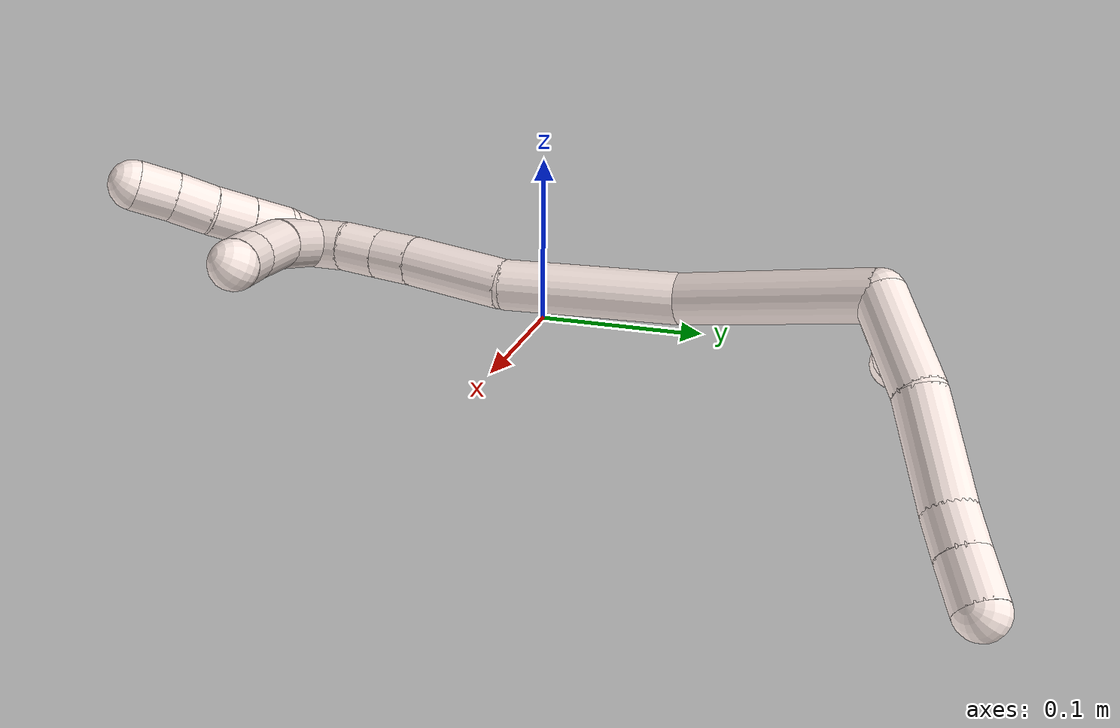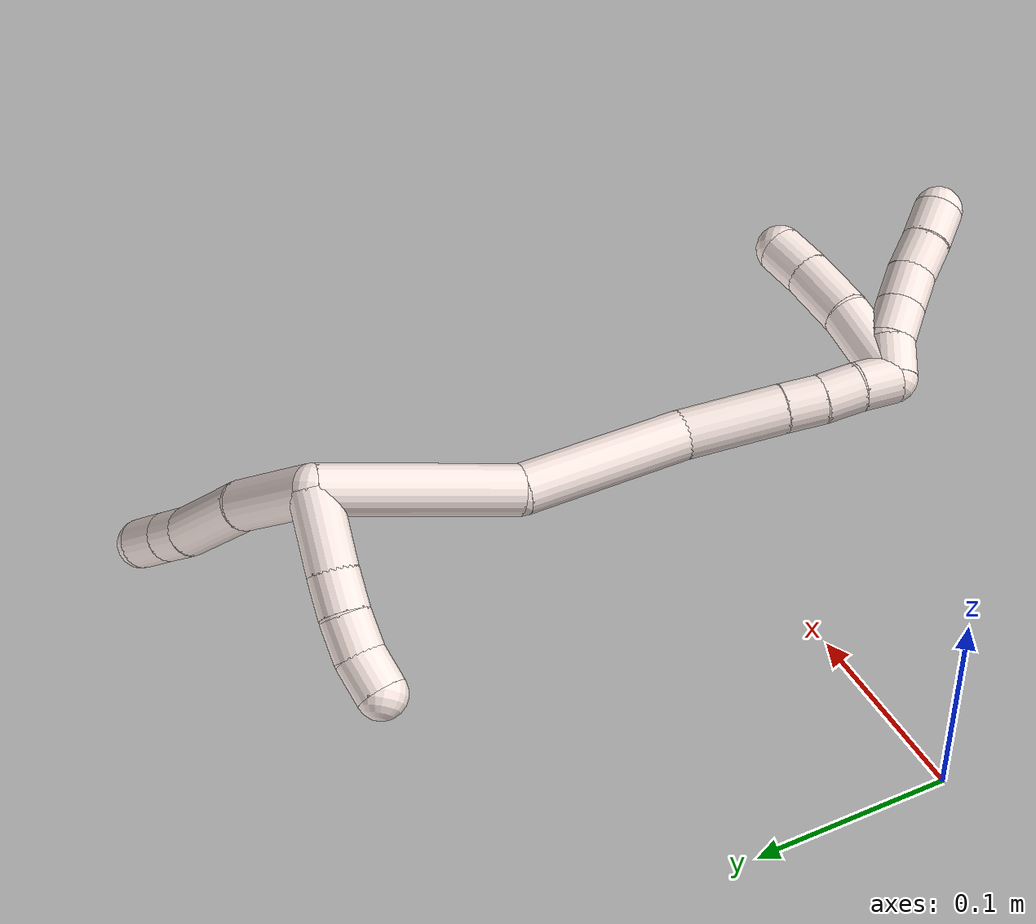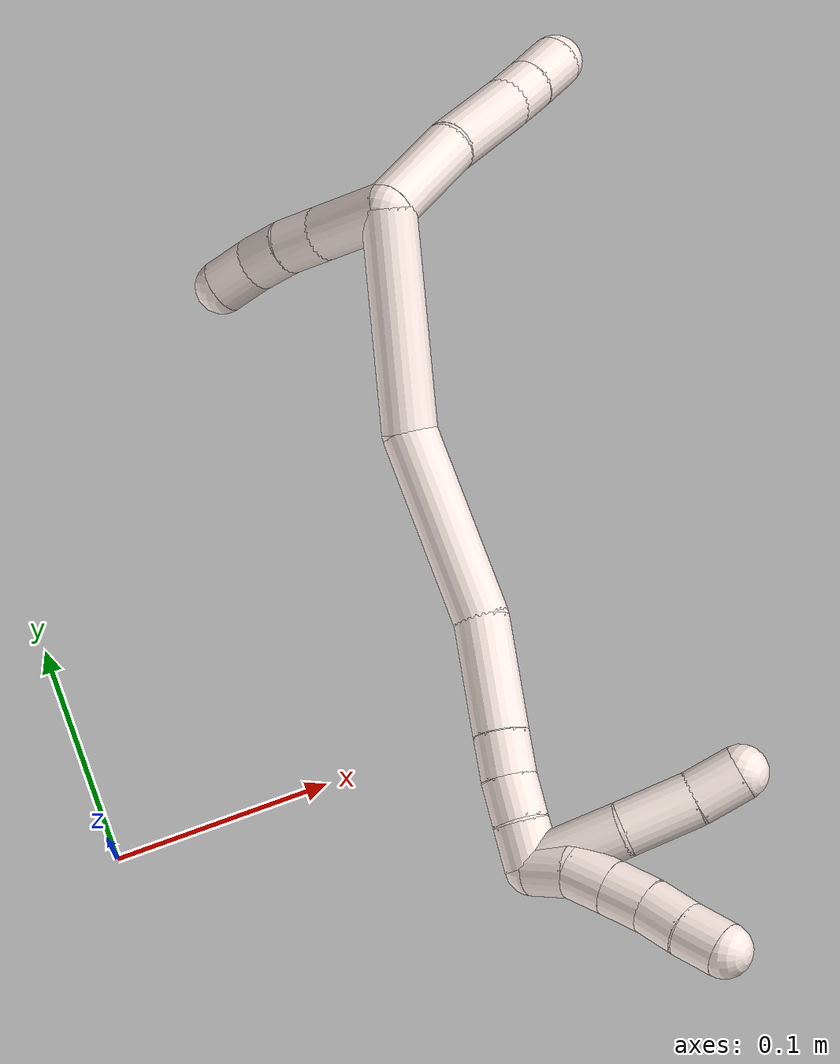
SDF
<sdf version="1.7">
 <world name="default">
  <model name="11">
   <static>0</static>
   <link name="11">
    <collision name="collision-cylinder-e_1_2_8">
     <pose>0.025138 0.007393 -0.001049 -1.7118 1.28204 -1.41999</pose>
     <geometry><cylinder><radius>0.0125</radius><length>0.052447</length></cylinder></geometry>
     <surface>
      <friction><ode><mu>1.16</mu><mu2>1.16</mu2><slip1>0</slip1><slip2>0</slip2></ode></friction>
      <contact><ode><kp>1e+06</kp><kd>1</kd><max_vel>0</max_vel><min_depth>0.001</min_depth></ode></contact>
     </surface>
    </collision>
    <visual name="visual-cylinder-e_1_2_8">
     <pose>0.025138 0.007393 -0.001049 -1.7118 1.28204 -1.41999</pose>
     <geometry><cylinder><radius>0.0125</radius><length>0.052447</length></cylinder></geometry>
     <material><ambient>1 0.933333 0.909804 1</ambient></material>
    </visual>
    <collision name="collision-cylinder-e_2_8_9">
     <pose>0.076539 0.017934 -0.004707 -2.26266 1.4164 -2.13751</pose>
     <geometry><cylinder><radius>0.0125</radius><length>0.053159</length></cylinder></geometry>
     <surface>
      <friction><ode><mu>1.16</mu><mu2>1.16</mu2><slip1>0</slip1><slip2>0</slip2></ode></friction>
      <contact><ode><kp>1e+06</kp><kd>1</kd><max_vel>0</max_vel><min_depth>0.001</min_depth></ode></contact>
     </surface>
    </collision>
    <visual name="visual-cylinder-e_2_8_9">
     <pose>0.076539 0.017934 -0.004707 -2.26266 1.4164 -2.13751</pose>
     <geometry><cylinder><radius>0.0125</radius><length>0.053159</length></cylinder></geometry>
     <material><ambient>1 0.933333 0.909804 1</ambient></material>
    </visual>
    <collision name="collision-cylinder-e_3_9_10">
     <pose>0.112638 0.023211 -0.007501 -1.65823 1.35679 -1.44303</pose>
     <geometry><cylinder><radius>0.0125</radius><length>0.02013</length></cylinder></geometry>
     <surface>
      <friction><ode><mu>1.16</mu><mu2>1.16</mu2><slip1>0</slip1><slip2>0</slip2></ode></friction>
      <contact><ode><kp>1e+06</kp><kd>1</kd><max_vel>0</max_vel><min_depth>0.001</min_depth></ode></contact>
     </surface>
    </collision>
    <visual name="visual-cylinder-e_3_9_10">
     <pose>0.112638 0.023211 -0.007501 -1.65823 1.35679 -1.44303</pose>
     <geometry><cylinder><radius>0.0125</radius><length>0.02013</length></cylinder></geometry>
     <material><ambient>1 0.933333 0.909804 1</ambient></material>
    </visual>
    <collision name="collision-cylinder-e_4_10_6">
     <pose>0.134289 0.028056 -0.008139 -1.73555 1.34191 -1.50543</pose>
     <geometry><cylinder><radius>0.0125</radius><length>0.024264</length></cylinder></geometry>
     <surface>
      <friction><ode><mu>1.16</mu><mu2>1.16</mu2><slip1>0</slip1><slip2>0</slip2></ode></friction>
      <contact><ode><kp>1e+06</kp><kd>1</kd><max_vel>0</max_vel><min_depth>0.001</min_depth></ode></contact>
     </surface>
    </collision>
    <visual name="visual-cylinder-e_4_10_6">
     <pose>0.134289 0.028056 -0.008139 -1.73555 1.34191 -1.50543</pose>
     <geometry><cylinder><radius>0.0125</radius><length>0.024264</length></cylinder></geometry>
     <material><ambient>1 0.933333 0.909804 1</ambient></material>
    </visual>
    <collision name="collision-cylinder-e_1_2_11">
     <pose>-0.000212 -0.008102 -0.017983 2.71829 -0.010765 -0.050092</pose>
     <geometry><cylinder><radius>0.0125</radius><length>0.03945</length></cylinder></geometry>
     <surface>
      <friction><ode><mu>1.16</mu><mu2>1.16</mu2><slip1>0</slip1><slip2>0</slip2></ode></friction>
      <contact><ode><kp>1e+06</kp><kd>1</kd><max_vel>0</max_vel><min_depth>0.001</min_depth></ode></contact>
     </surface>
    </collision>
    <visual name="visual-cylinder-e_1_2_11">
     <pose>-0.000212 -0.008102 -0.017983 2.71829 -0.010765 -0.050092</pose>
     <geometry><cylinder><radius>0.0125</radius><length>0.03945</length></cylinder></geometry>
     <material><ambient>1 0.933333 0.909804 1</ambient></material>
    </visual>
    <collision name="collision-cylinder-e_2_11_12">
     <pose>-0.001581 -0.020357 -0.045266 2.72166 -0.113023 -0.518949</pose>
     <geometry><cylinder><radius>0.0125</radius><length>0.020501</length></cylinder></geometry>
     <surface>
      <friction><ode><mu>1.16</mu><mu2>1.16</mu2><slip1>0</slip1><slip2>0</slip2></ode></friction>
      <contact><ode><kp>1e+06</kp><kd>1</kd><max_vel>0</max_vel><min_depth>0.001</min_depth></ode></contact>
     </surface>
    </collision>
    <visual name="visual-cylinder-e_2_11_12">
     <pose>-0.001581 -0.020357 -0.045266 2.72166 -0.113023 -0.518949</pose>
     <geometry><cylinder><radius>0.0125</radius><length>0.020501</length></cylinder></geometry>
     <material><ambient>1 0.933333 0.909804 1</ambient></material>
    </visual>
    <collision name="collision-cylinder-e_3_12_13">
     <pose>-0.00337 -0.029596 -0.063179 2.60814 -0.063195 -0.230335</pose>
     <geometry><cylinder><radius>0.0125</radius><length>0.020046</length></cylinder></geometry>
     <surface>
      <friction><ode><mu>1.16</mu><mu2>1.16</mu2><slip1>0</slip1><slip2>0</slip2></ode></friction>
      <contact><ode><kp>1e+06</kp><kd>1</kd><max_vel>0</max_vel><min_depth>0.001</min_depth></ode></contact>
     </surface>
    </collision>
    <visual name="visual-cylinder-e_3_12_13">
     <pose>-0.00337 -0.029596 -0.063179 2.60814 -0.063195 -0.230335</pose>
     <geometry><cylinder><radius>0.0125</radius><length>0.020046</length></cylinder></geometry>
     <material><ambient>1 0.933333 0.909804 1</ambient></material>
    </visual>
    <collision name="collision-cylinder-e_4_13_5">
     <pose>-0.006668 -0.040405 -0.07955 2.50603 -0.269793 -0.782664</pose>
     <geometry><cylinder><radius>0.0125</radius><length>0.020003</length></cylinder></geometry>
     <surface>
      <friction><ode><mu>1.16</mu><mu2>1.16</mu2><slip1>0</slip1><slip2>0</slip2></ode></friction>
      <contact><ode><kp>1e+06</kp><kd>1</kd><max_vel>0</max_vel><min_depth>0.001</min_depth></ode></contact>
     </surface>
    </collision>
    <visual name="visual-cylinder-e_4_13_5">
     <pose>-0.006668 -0.040405 -0.07955 2.50603 -0.269793 -0.782664</pose>
     <geometry><cylinder><radius>0.0125</radius><length>0.020003</length></cylinder></geometry>
     <material><ambient>1 0.933333 0.909804 1</ambient></material>
    </visual>
    <collision name="collision-cylinder-e_1_2_14">
     <pose>-0.010125 -0.047486 0.010692 1.34932 -0.205081 -0.164245</pose>
     <geometry><cylinder><radius>0.0125</radius><length>0.099434</length></cylinder></geometry>
     <surface>
      <friction><ode><mu>1.16</mu><mu2>1.16</mu2><slip1>0</slip1><slip2>0</slip2></ode></friction>
      <contact><ode><kp>1e+06</kp><kd>1</kd><max_vel>0</max_vel><min_depth>0.001</min_depth></ode></contact>
     </surface>
    </collision>
    <visual name="visual-cylinder-e_1_2_14">
     <pose>-0.010125 -0.047486 0.010692 1.34932 -0.205081 -0.164245</pose>
     <geometry><cylinder><radius>0.0125</radius><length>0.099434</length></cylinder></geometry>
     <material><ambient>1 0.933333 0.909804 1</ambient></material>
    </visual>
    <collision name="collision-cylinder-e_2_14_15">
     <pose>-0.027442 -0.132205 0.043977 1.02539 -0.163684 -0.092279</pose>
     <geometry><cylinder><radius>0.0125</radius><length>0.088282</length></cylinder></geometry>
     <surface>
      <friction><ode><mu>1.16</mu><mu2>1.16</mu2><slip1>0</slip1><slip2>0</slip2></ode></friction>
      <contact><ode><kp>1e+06</kp><kd>1</kd><max_vel>0</max_vel><min_depth>0.001</min_depth></ode></contact>
     </surface>
    </collision>
    <visual name="visual-cylinder-e_2_14_15">
     <pose>-0.027442 -0.132205 0.043977 1.02539 -0.163684 -0.092279</pose>
     <geometry><cylinder><radius>0.0125</radius><length>0.088282</length></cylinder></geometry>
     <material><ambient>1 0.933333 0.909804 1</ambient></material>
    </visual>
    <collision name="collision-cylinder-e_3_15_16">
     <pose>-0.044098 -0.191105 0.077419 1.10657 -0.372284 -0.231589</pose>
     <geometry><cylinder><radius>0.0125</radius><length>0.052029</length></cylinder></geometry>
     <surface>
      <friction><ode><mu>1.16</mu><mu2>1.16</mu2><slip1>0</slip1><slip2>0</slip2></ode></friction>
      <contact><ode><kp>1e+06</kp><kd>1</kd><max_vel>0</max_vel><min_depth>0.001</min_depth></ode></contact>
     </surface>
    </collision>
    <visual name="visual-cylinder-e_3_15_16">
     <pose>-0.044098 -0.191105 0.077419 1.10657 -0.372284 -0.231589</pose>
     <geometry><cylinder><radius>0.0125</radius><length>0.052029</length></cylinder></geometry>
     <material><ambient>1 0.933333 0.909804 1</ambient></material>
    </visual>
    <collision name="collision-cylinder-e_4_16_17">
     <pose>-0.056907 -0.22137 0.092365 1.12622 -0.337912 -0.214546</pose>
     <geometry><cylinder><radius>0.0125</radius><length>0.020188</length></cylinder></geometry>
     <surface>
      <friction><ode><mu>1.16</mu><mu2>1.16</mu2><slip1>0</slip1><slip2>0</slip2></ode></friction>
      <contact><ode><kp>1e+06</kp><kd>1</kd><max_vel>0</max_vel><min_depth>0.001</min_depth></ode></contact>
     </surface>
    </collision>
    <visual name="visual-cylinder-e_4_16_17">
     <pose>-0.056907 -0.22137 0.092365 1.12622 -0.337912 -0.214546</pose>
     <geometry><cylinder><radius>0.0125</radius><length>0.020188</length></cylinder></geometry>
     <material><ambient>1 0.933333 0.909804 1</ambient></material>
    </visual>
    <collision name="collision-cylinder-e_5_17_18">
     <pose>-0.063343 -0.238168 0.101341 1.03389 -0.313143 -0.179016</pose>
     <geometry><cylinder><radius>0.0125</radius><length>0.020062</length></cylinder></geometry>
     <surface>
      <friction><ode><mu>1.16</mu><mu2>1.16</mu2><slip1>0</slip1><slip2>0</slip2></ode></friction>
      <contact><ode><kp>1e+06</kp><kd>1</kd><max_vel>0</max_vel><min_depth>0.001</min_depth></ode></contact>
     </surface>
    </collision>
    <visual name="visual-cylinder-e_5_17_18">
     <pose>-0.063343 -0.238168 0.101341 1.03389 -0.313143 -0.179016</pose>
     <geometry><cylinder><radius>0.0125</radius><length>0.020062</length></cylinder></geometry>
     <material><ambient>1 0.933333 0.909804 1</ambient></material>
    </visual>
    <collision name="collision-cylinder-e_6_18_1">
     <pose>-0.068714 -0.255072 0.110594 1.10535 -0.230067 -0.142292</pose>
     <geometry><cylinder><radius>0.0125</radius><length>0.020006</length></cylinder></geometry>
     <surface>
      <friction><ode><mu>1.16</mu><mu2>1.16</mu2><slip1>0</slip1><slip2>0</slip2></ode></friction>
      <contact><ode><kp>1e+06</kp><kd>1</kd><max_vel>0</max_vel><min_depth>0.001</min_depth></ode></contact>
     </surface>
    </collision>
    <visual name="visual-cylinder-e_6_18_1">
     <pose>-0.068714 -0.255072 0.110594 1.10535 -0.230067 -0.142292</pose>
     <geometry><cylinder><radius>0.0125</radius><length>0.020006</length></cylinder></geometry>
     <material><ambient>1 0.933333 0.909804 1</ambient></material>
    </visual>
    <collision name="collision-cylinder-e_1_1_19">
     <pose>-0.069895 -0.262638 0.124839 -0.114675 0.11022 -0.006333</pose>
     <geometry><cylinder><radius>0.0125</radius><length>0.02</length></cylinder></geometry>
     <surface>
      <friction><ode><mu>1.16</mu><mu2>1.16</mu2><slip1>0</slip1><slip2>0</slip2></ode></friction>
      <contact><ode><kp>1e+06</kp><kd>1</kd><max_vel>0</max_vel><min_depth>0.001</min_depth></ode></contact>
     </surface>
    </collision>
    <visual name="visual-cylinder-e_1_1_19">
     <pose>-0.069895 -0.262638 0.124839 -0.114675 0.11022 -0.006333</pose>
     <geometry><cylinder><radius>0.0125</radius><length>0.02</length></cylinder></geometry>
     <material><ambient>1 0.933333 0.909804 1</ambient></material>
    </visual>
    <collision name="collision-cylinder-e_2_19_20">
     <pose>-0.068458 -0.263731 0.144455 0.225097 0.033747 0.003815</pose>
     <geometry><cylinder><radius>0.0125</radius><length>0.02</length></cylinder></geometry>
     <surface>
      <friction><ode><mu>1.16</mu><mu2>1.16</mu2><slip1>0</slip1><slip2>0</slip2></ode></friction>
      <contact><ode><kp>1e+06</kp><kd>1</kd><max_vel>0</max_vel><min_depth>0.001</min_depth></ode></contact>
     </surface>
    </collision>
    <visual name="visual-cylinder-e_2_19_20">
     <pose>-0.068458 -0.263731 0.144455 0.225097 0.033747 0.003815</pose>
     <geometry><cylinder><radius>0.0125</radius><length>0.02</length></cylinder></geometry>
     <material><ambient>1 0.933333 0.909804 1</ambient></material>
    </visual>
    <collision name="collision-cylinder-e_3_20_21">
     <pose>-0.067903 -0.26832 0.163913 0.238076 0.021745 0.002601</pose>
     <geometry><cylinder><radius>0.0125</radius><length>0.02</length></cylinder></geometry>
     <surface>
      <friction><ode><mu>1.16</mu><mu2>1.16</mu2><slip1>0</slip1><slip2>0</slip2></ode></friction>
      <contact><ode><kp>1e+06</kp><kd>1</kd><max_vel>0</max_vel><min_depth>0.001</min_depth></ode></contact>
     </surface>
    </collision>
    <visual name="visual-cylinder-e_3_20_21">
     <pose>-0.067903 -0.26832 0.163913 0.238076 0.021745 0.002601</pose>
     <geometry><cylinder><radius>0.0125</radius><length>0.02</length></cylinder></geometry>
     <material><ambient>1 0.933333 0.909804 1</ambient></material>
    </visual>
    <collision name="collision-cylinder-e_4_21_22">
     <pose>-0.068507 -0.273578 0.183164 0.295275 -0.08218 -0.012228</pose>
     <geometry><cylinder><radius>0.0125</radius><length>0.02</length></cylinder></geometry>
     <surface>
      <friction><ode><mu>1.16</mu><mu2>1.16</mu2><slip1>0</slip1><slip2>0</slip2></ode></friction>
      <contact><ode><kp>1e+06</kp><kd>1</kd><max_vel>0</max_vel><min_depth>0.001</min_depth></ode></contact>
     </surface>
    </collision>
    <visual name="visual-cylinder-e_4_21_22">
     <pose>-0.068507 -0.273578 0.183164 0.295275 -0.08218 -0.012228</pose>
     <geometry><cylinder><radius>0.0125</radius><length>0.02</length></cylinder></geometry>
     <material><ambient>1 0.933333 0.909804 1</ambient></material>
    </visual>
    <collision name="collision-cylinder-e_5_22_4">
     <pose>-0.069382 -0.279163 0.202331 0.271902 -0.00547 -0.000748</pose>
     <geometry><cylinder><radius>0.0125</radius><length>0.02</length></cylinder></geometry>
     <surface>
      <friction><ode><mu>1.16</mu><mu2>1.16</mu2><slip1>0</slip1><slip2>0</slip2></ode></friction>
      <contact><ode><kp>1e+06</kp><kd>1</kd><max_vel>0</max_vel><min_depth>0.001</min_depth></ode></contact>
     </surface>
    </collision>
    <visual name="visual-cylinder-e_5_22_4">
     <pose>-0.069382 -0.279163 0.202331 0.271902 -0.00547 -0.000748</pose>
     <geometry><cylinder><radius>0.0125</radius><length>0.02</length></cylinder></geometry>
     <material><ambient>1 0.933333 0.909804 1</ambient></material>
    </visual>
    <collision name="collision-cylinder-e_1_1_23">
     <pose>-0.060577 -0.25501 0.132063 -0.47369 0.496886 -0.122313</pose>
     <geometry><cylinder><radius>0.0125</radius><length>0.043713</length></cylinder></geometry>
     <surface>
      <friction><ode><mu>1.16</mu><mu2>1.16</mu2><slip1>0</slip1><slip2>0</slip2></ode></friction>
      <contact><ode><kp>1e+06</kp><kd>1</kd><max_vel>0</max_vel><min_depth>0.001</min_depth></ode></contact>
     </surface>
    </collision>
    <visual name="visual-cylinder-e_1_1_23">
     <pose>-0.060577 -0.25501 0.132063 -0.47369 0.496886 -0.122313</pose>
     <geometry><cylinder><radius>0.0125</radius><length>0.043713</length></cylinder></geometry>
     <material><ambient>1 0.933333 0.909804 1</ambient></material>
    </visual>
    <collision name="collision-cylinder-e_2_23_24">
     <pose>-0.039901 -0.240282 0.160956 -0.468107 0.659949 -0.162956</pose>
     <geometry><cylinder><radius>0.0125</radius><length>0.033461</length></cylinder></geometry>
     <surface>
      <friction><ode><mu>1.16</mu><mu2>1.16</mu2><slip1>0</slip1><slip2>0</slip2></ode></friction>
      <contact><ode><kp>1e+06</kp><kd>1</kd><max_vel>0</max_vel><min_depth>0.001</min_depth></ode></contact>
     </surface>
    </collision>
    <visual name="visual-cylinder-e_2_23_24">
     <pose>-0.039901 -0.240282 0.160956 -0.468107 0.659949 -0.162956</pose>
     <geometry><cylinder><radius>0.0125</radius><length>0.033461</length></cylinder></geometry>
     <material><ambient>1 0.933333 0.909804 1</ambient></material>
    </visual>
    <collision name="collision-cylinder-e_3_24_3">
     <pose>-0.022768 -0.229147 0.180251 -0.60372 0.646556 -0.207889</pose>
     <geometry><cylinder><radius>0.0125</radius><length>0.022827</length></cylinder></geometry>
     <surface>
      <friction><ode><mu>1.16</mu><mu2>1.16</mu2><slip1>0</slip1><slip2>0</slip2></ode></friction>
      <contact><ode><kp>1e+06</kp><kd>1</kd><max_vel>0</max_vel><min_depth>0.001</min_depth></ode></contact>
     </surface>
    </collision>
    <visual name="visual-cylinder-e_3_24_3">
     <pose>-0.022768 -0.229147 0.180251 -0.60372 0.646556 -0.207889</pose>
     <geometry><cylinder><radius>0.0125</radius><length>0.022827</length></cylinder></geometry>
     <material><ambient>1 0.933333 0.909804 1</ambient></material>
    </visual>
    <collision name="collision-sphere-3">
     <pose>-0.015892 -0.223975 0.18775 0 -0 0</pose>
     <geometry><sphere><radius>0.0125</radius></sphere></geometry>
     <surface>
      <friction><ode><mu>1.16</mu><mu2>1.16</mu2><slip1>0</slip1><slip2>0</slip2></ode></friction>
      <contact><ode><kp>1e+06</kp><kd>1</kd><max_vel>0</max_vel><min_depth>0.001</min_depth></ode></contact>
     </surface>
    </collision>
    <visual name="visual-sphere-3">
     <pose>-0.015892 -0.223975 0.18775 0 -0 0</pose>
     <geometry><sphere><radius>0.0125</radius></sphere></geometry>
     <material><ambient>1 0.933333 0.909804 1</ambient></material>
    </visual>
    <collision name="collision-sphere-24">
     <pose>-0.029644 -0.234319 0.172751 0 -0 0</pose>
     <geometry><sphere><radius>0.0125</radius></sphere></geometry>
     <surface>
      <friction><ode><mu>1.16</mu><mu2>1.16</mu2><slip1>0</slip1><slip2>0</slip2></ode></friction>
      <contact><ode><kp>1e+06</kp><kd>1</kd><max_vel>0</max_vel><min_depth>0.001</min_depth></ode></contact>
     </surface>
    </collision>
    <visual name="visual-sphere-24">
     <pose>-0.029644 -0.234319 0.172751 0 -0 0</pose>
     <geometry><sphere><radius>0.0125</radius></sphere></geometry>
     <material><ambient>1 0.933333 0.909804 1</ambient></material>
    </visual>
    <collision name="collision-sphere-23">
     <pose>-0.050158 -0.246246 0.149161 0 -0 0</pose>
     <geometry><sphere><radius>0.0125</radius></sphere></geometry>
     <surface>
      <friction><ode><mu>1.16</mu><mu2>1.16</mu2><slip1>0</slip1><slip2>0</slip2></ode></friction>
      <contact><ode><kp>1e+06</kp><kd>1</kd><max_vel>0</max_vel><min_depth>0.001</min_depth></ode></contact>
     </surface>
    </collision>
    <visual name="visual-sphere-23">
     <pose>-0.050158 -0.246246 0.149161 0 -0 0</pose>
     <geometry><sphere><radius>0.0125</radius></sphere></geometry>
     <material><ambient>1 0.933333 0.909804 1</ambient></material>
    </visual>
    <collision name="collision-sphere-4">
     <pose>-0.069437 -0.281849 0.211963 0 -0 0</pose>
     <geometry><sphere><radius>0.0125</radius></sphere></geometry>
     <surface>
      <friction><ode><mu>1.16</mu><mu2>1.16</mu2><slip1>0</slip1><slip2>0</slip2></ode></friction>
      <contact><ode><kp>1e+06</kp><kd>1</kd><max_vel>0</max_vel><min_depth>0.001</min_depth></ode></contact>
     </surface>
    </collision>
    <visual name="visual-sphere-4">
     <pose>-0.069437 -0.281849 0.211963 0 -0 0</pose>
     <geometry><sphere><radius>0.0125</radius></sphere></geometry>
     <material><ambient>1 0.933333 0.909804 1</ambient></material>
    </visual>
    <collision name="collision-sphere-22">
     <pose>-0.069327 -0.276478 0.192699 0 -0 0</pose>
     <geometry><sphere><radius>0.0125</radius></sphere></geometry>
     <surface>
      <friction><ode><mu>1.16</mu><mu2>1.16</mu2><slip1>0</slip1><slip2>0</slip2></ode></friction>
      <contact><ode><kp>1e+06</kp><kd>1</kd><max_vel>0</max_vel><min_depth>0.001</min_depth></ode></contact>
     </surface>
    </collision>
    <visual name="visual-sphere-22">
     <pose>-0.069327 -0.276478 0.192699 0 -0 0</pose>
     <geometry><sphere><radius>0.0125</radius></sphere></geometry>
     <material><ambient>1 0.933333 0.909804 1</ambient></material>
    </visual>
    <collision name="collision-sphere-21">
     <pose>-0.067686 -0.270677 0.173629 0 -0 0</pose>
     <geometry><sphere><radius>0.0125</radius></sphere></geometry>
     <surface>
      <friction><ode><mu>1.16</mu><mu2>1.16</mu2><slip1>0</slip1><slip2>0</slip2></ode></friction>
      <contact><ode><kp>1e+06</kp><kd>1</kd><max_vel>0</max_vel><min_depth>0.001</min_depth></ode></contact>
     </surface>
    </collision>
    <visual name="visual-sphere-21">
     <pose>-0.067686 -0.270677 0.173629 0 -0 0</pose>
     <geometry><sphere><radius>0.0125</radius></sphere></geometry>
     <material><ambient>1 0.933333 0.909804 1</ambient></material>
    </visual>
    <collision name="collision-sphere-20">
     <pose>-0.068121 -0.265962 0.154197 0 -0 0</pose>
     <geometry><sphere><radius>0.0125</radius></sphere></geometry>
     <surface>
      <friction><ode><mu>1.16</mu><mu2>1.16</mu2><slip1>0</slip1><slip2>0</slip2></ode></friction>
      <contact><ode><kp>1e+06</kp><kd>1</kd><max_vel>0</max_vel><min_depth>0.001</min_depth></ode></contact>
     </surface>
    </collision>
    <visual name="visual-sphere-20">
     <pose>-0.068121 -0.265962 0.154197 0 -0 0</pose>
     <geometry><sphere><radius>0.0125</radius></sphere></geometry>
     <material><ambient>1 0.933333 0.909804 1</ambient></material>
    </visual>
    <collision name="collision-sphere-11">
     <pose>-0.000425 -0.016204 -0.035966 0 -0 0</pose>
     <geometry><sphere><radius>0.0125</radius></sphere></geometry>
     <surface>
      <friction><ode><mu>1.16</mu><mu2>1.16</mu2><slip1>0</slip1><slip2>0</slip2></ode></friction>
      <contact><ode><kp>1e+06</kp><kd>1</kd><max_vel>0</max_vel><min_depth>0.001</min_depth></ode></contact>
     </surface>
    </collision>
    <visual name="visual-sphere-11">
     <pose>-0.000425 -0.016204 -0.035966 0 -0 0</pose>
     <geometry><sphere><radius>0.0125</radius></sphere></geometry>
     <material><ambient>1 0.933333 0.909804 1</ambient></material>
    </visual>
    <collision name="collision-sphere-6">
     <pose>0.146104 0.030772 -0.008591 0 -0 0</pose>
     <geometry><sphere><radius>0.0125</radius></sphere></geometry>
     <surface>
      <friction><ode><mu>1.16</mu><mu2>1.16</mu2><slip1>0</slip1><slip2>0</slip2></ode></friction>
      <contact><ode><kp>1e+06</kp><kd>1</kd><max_vel>0</max_vel><min_depth>0.001</min_depth></ode></contact>
     </surface>
    </collision>
    <visual name="visual-sphere-6">
     <pose>0.146104 0.030772 -0.008591 0 -0 0</pose>
     <geometry><sphere><radius>0.0125</radius></sphere></geometry>
     <material><ambient>1 0.933333 0.909804 1</ambient></material>
    </visual>
    <collision name="collision-sphere-10">
     <pose>0.122473 0.025341 -0.007688 0 -0 0</pose>
     <geometry><sphere><radius>0.0125</radius></sphere></geometry>
     <surface>
      <friction><ode><mu>1.16</mu><mu2>1.16</mu2><slip1>0</slip1><slip2>0</slip2></ode></friction>
      <contact><ode><kp>1e+06</kp><kd>1</kd><max_vel>0</max_vel><min_depth>0.001</min_depth></ode></contact>
     </surface>
    </collision>
    <visual name="visual-sphere-10">
     <pose>0.122473 0.025341 -0.007688 0 -0 0</pose>
     <geometry><sphere><radius>0.0125</radius></sphere></geometry>
     <material><ambient>1 0.933333 0.909804 1</ambient></material>
    </visual>
    <collision name="collision-sphere-9">
     <pose>0.102803 0.021082 -0.007314 0 -0 0</pose>
     <geometry><sphere><radius>0.0125</radius></sphere></geometry>
     <surface>
      <friction><ode><mu>1.16</mu><mu2>1.16</mu2><slip1>0</slip1><slip2>0</slip2></ode></friction>
      <contact><ode><kp>1e+06</kp><kd>1</kd><max_vel>0</max_vel><min_depth>0.001</min_depth></ode></contact>
     </surface>
    </collision>
    <visual name="visual-sphere-9">
     <pose>0.102803 0.021082 -0.007314 0 -0 0</pose>
     <geometry><sphere><radius>0.0125</radius></sphere></geometry>
     <material><ambient>1 0.933333 0.909804 1</ambient></material>
    </visual>
    <collision name="collision-sphere-2">
     <geometry><sphere><radius>0.0125</radius></sphere></geometry>
     <surface>
      <friction><ode><mu>1.16</mu><mu2>1.16</mu2><slip1>0</slip1><slip2>0</slip2></ode></friction>
      <contact><ode><kp>1e+06</kp><kd>1</kd><max_vel>0</max_vel><min_depth>0.001</min_depth></ode></contact>
     </surface>
    </collision>
    <visual name="visual-sphere-2">
     <geometry><sphere><radius>0.0125</radius></sphere></geometry>
     <material><ambient>1 0.933333 0.909804 1</ambient></material>
    </visual>
    <collision name="collision-sphere-19">
     <pose>-0.068795 -0.2615 0.134713 0 -0 0</pose>
     <geometry><sphere><radius>0.0125</radius></sphere></geometry>
     <surface>
      <friction><ode><mu>1.16</mu><mu2>1.16</mu2><slip1>0</slip1><slip2>0</slip2></ode></friction>
      <contact><ode><kp>1e+06</kp><kd>1</kd><max_vel>0</max_vel><min_depth>0.001</min_depth></ode></contact>
     </surface>
    </collision>
    <visual name="visual-sphere-19">
     <pose>-0.068795 -0.2615 0.134713 0 -0 0</pose>
     <geometry><sphere><radius>0.0125</radius></sphere></geometry>
     <material><ambient>1 0.933333 0.909804 1</ambient></material>
    </visual>
    <collision name="collision-sphere-8">
     <pose>0.050276 0.014787 -0.002099 0 -0 0</pose>
     <geometry><sphere><radius>0.0125</radius></sphere></geometry>
     <surface>
      <friction><ode><mu>1.16</mu><mu2>1.16</mu2><slip1>0</slip1><slip2>0</slip2></ode></friction>
      <contact><ode><kp>1e+06</kp><kd>1</kd><max_vel>0</max_vel><min_depth>0.001</min_depth></ode></contact>
     </surface>
    </collision>
    <visual name="visual-sphere-8">
     <pose>0.050276 0.014787 -0.002099 0 -0 0</pose>
     <geometry><sphere><radius>0.0125</radius></sphere></geometry>
     <material><ambient>1 0.933333 0.909804 1</ambient></material>
    </visual>
    <collision name="collision-sphere-12">
     <pose>-0.002737 -0.024509 -0.054566 0 -0 0</pose>
     <geometry><sphere><radius>0.0125</radius></sphere></geometry>
     <surface>
      <friction><ode><mu>1.16</mu><mu2>1.16</mu2><slip1>0</slip1><slip2>0</slip2></ode></friction>
      <contact><ode><kp>1e+06</kp><kd>1</kd><max_vel>0</max_vel><min_depth>0.001</min_depth></ode></contact>
     </surface>
    </collision>
    <visual name="visual-sphere-12">
     <pose>-0.002737 -0.024509 -0.054566 0 -0 0</pose>
     <geometry><sphere><radius>0.0125</radius></sphere></geometry>
     <material><ambient>1 0.933333 0.909804 1</ambient></material>
    </visual>
    <collision name="collision-sphere-13">
     <pose>-0.004003 -0.034682 -0.071792 0 -0 0</pose>
     <geometry><sphere><radius>0.0125</radius></sphere></geometry>
     <surface>
      <friction><ode><mu>1.16</mu><mu2>1.16</mu2><slip1>0</slip1><slip2>0</slip2></ode></friction>
      <contact><ode><kp>1e+06</kp><kd>1</kd><max_vel>0</max_vel><min_depth>0.001</min_depth></ode></contact>
     </surface>
    </collision>
    <visual name="visual-sphere-13">
     <pose>-0.004003 -0.034682 -0.071792 0 -0 0</pose>
     <geometry><sphere><radius>0.0125</radius></sphere></geometry>
     <material><ambient>1 0.933333 0.909804 1</ambient></material>
    </visual>
    <collision name="collision-sphere-5">
     <pose>-0.009334 -0.046127 -0.087307 0 -0 0</pose>
     <geometry><sphere><radius>0.0125</radius></sphere></geometry>
     <surface>
      <friction><ode><mu>1.16</mu><mu2>1.16</mu2><slip1>0</slip1><slip2>0</slip2></ode></friction>
      <contact><ode><kp>1e+06</kp><kd>1</kd><max_vel>0</max_vel><min_depth>0.001</min_depth></ode></contact>
     </surface>
    </collision>
    <visual name="visual-sphere-5">
     <pose>-0.009334 -0.046127 -0.087307 0 -0 0</pose>
     <geometry><sphere><radius>0.0125</radius></sphere></geometry>
     <material><ambient>1 0.933333 0.909804 1</ambient></material>
    </visual>
    <collision name="collision-sphere-14">
     <pose>-0.020249 -0.094972 0.021385 0 -0 0</pose>
     <geometry><sphere><radius>0.0125</radius></sphere></geometry>
     <surface>
      <friction><ode><mu>1.16</mu><mu2>1.16</mu2><slip1>0</slip1><slip2>0</slip2></ode></friction>
      <contact><ode><kp>1e+06</kp><kd>1</kd><max_vel>0</max_vel><min_depth>0.001</min_depth></ode></contact>
     </surface>
    </collision>
    <visual name="visual-sphere-14">
     <pose>-0.020249 -0.094972 0.021385 0 -0 0</pose>
     <geometry><sphere><radius>0.0125</radius></sphere></geometry>
     <material><ambient>1 0.933333 0.909804 1</ambient></material>
    </visual>
    <collision name="collision-sphere-15">
     <pose>-0.034635 -0.169437 0.06657 0 -0 0</pose>
     <geometry><sphere><radius>0.0125</radius></sphere></geometry>
     <surface>
      <friction><ode><mu>1.16</mu><mu2>1.16</mu2><slip1>0</slip1><slip2>0</slip2></ode></friction>
      <contact><ode><kp>1e+06</kp><kd>1</kd><max_vel>0</max_vel><min_depth>0.001</min_depth></ode></contact>
     </surface>
    </collision>
    <visual name="visual-sphere-15">
     <pose>-0.034635 -0.169437 0.06657 0 -0 0</pose>
     <geometry><sphere><radius>0.0125</radius></sphere></geometry>
     <material><ambient>1 0.933333 0.909804 1</ambient></material>
    </visual>
    <collision name="collision-sphere-16">
     <pose>-0.05356 -0.212773 0.088269 0 -0 0</pose>
     <geometry><sphere><radius>0.0125</radius></sphere></geometry>
     <surface>
      <friction><ode><mu>1.16</mu><mu2>1.16</mu2><slip1>0</slip1><slip2>0</slip2></ode></friction>
      <contact><ode><kp>1e+06</kp><kd>1</kd><max_vel>0</max_vel><min_depth>0.001</min_depth></ode></contact>
     </surface>
    </collision>
    <visual name="visual-sphere-16">
     <pose>-0.05356 -0.212773 0.088269 0 -0 0</pose>
     <geometry><sphere><radius>0.0125</radius></sphere></geometry>
     <material><ambient>1 0.933333 0.909804 1</ambient></material>
    </visual>
    <collision name="collision-sphere-17">
     <pose>-0.060253 -0.229968 0.09646 0 -0 0</pose>
     <geometry><sphere><radius>0.0125</radius></sphere></geometry>
     <surface>
      <friction><ode><mu>1.16</mu><mu2>1.16</mu2><slip1>0</slip1><slip2>0</slip2></ode></friction>
      <contact><ode><kp>1e+06</kp><kd>1</kd><max_vel>0</max_vel><min_depth>0.001</min_depth></ode></contact>
     </surface>
    </collision>
    <visual name="visual-sphere-17">
     <pose>-0.060253 -0.229968 0.09646 0 -0 0</pose>
     <geometry><sphere><radius>0.0125</radius></sphere></geometry>
     <material><ambient>1 0.933333 0.909804 1</ambient></material>
    </visual>
    <collision name="collision-sphere-18">
     <pose>-0.066433 -0.246368 0.106222 0 -0 0</pose>
     <geometry><sphere><radius>0.0125</radius></sphere></geometry>
     <surface>
      <friction><ode><mu>1.16</mu><mu2>1.16</mu2><slip1>0</slip1><slip2>0</slip2></ode></friction>
      <contact><ode><kp>1e+06</kp><kd>1</kd><max_vel>0</max_vel><min_depth>0.001</min_depth></ode></contact>
     </surface>
    </collision>
    <visual name="visual-sphere-18">
     <pose>-0.066433 -0.246368 0.106222 0 -0 0</pose>
     <geometry><sphere><radius>0.0125</radius></sphere></geometry>
     <material><ambient>1 0.933333 0.909804 1</ambient></material>
    </visual>
    <collision name="collision-sphere-1">
     <pose>-0.070995 -0.263775 0.114965 0 -0 0</pose>
     <geometry><sphere><radius>0.0125</radius></sphere></geometry>
     <surface>
      <friction><ode><mu>1.16</mu><mu2>1.16</mu2><slip1>0</slip1><slip2>0</slip2></ode></friction>
      <contact><ode><kp>1e+06</kp><kd>1</kd><max_vel>0</max_vel><min_depth>0.001</min_depth></ode></contact>
     </surface>
    </collision>
    <visual name="visual-sphere-1">
     <pose>-0.070995 -0.263775 0.114965 0 -0 0</pose>
     <geometry><sphere><radius>0.0125</radius></sphere></geometry>
     <material><ambient>1 0.933333 0.909804 1</ambient></material>
    </visual>
    <inertial>
     <pose>-0.013643 -0.122269 0.055443 0 -0 0</pose>
     <mass>0.75</mass>
     <inertia>
      <ixx>0.000164</ixx>
      <ixy>0</ixy>
      <ixz>0</ixz>
      <iyy>5.1e-05</iyy>
      <iyz>0</iyz>
      <izz>0.000152</izz>
     </inertia>
    </inertial>
   </link>
   <pose>0.208513 0.219572 0.104698 0.733221 0.785236 0.266274</pose>
  </model>
 </world>
</sdf>
